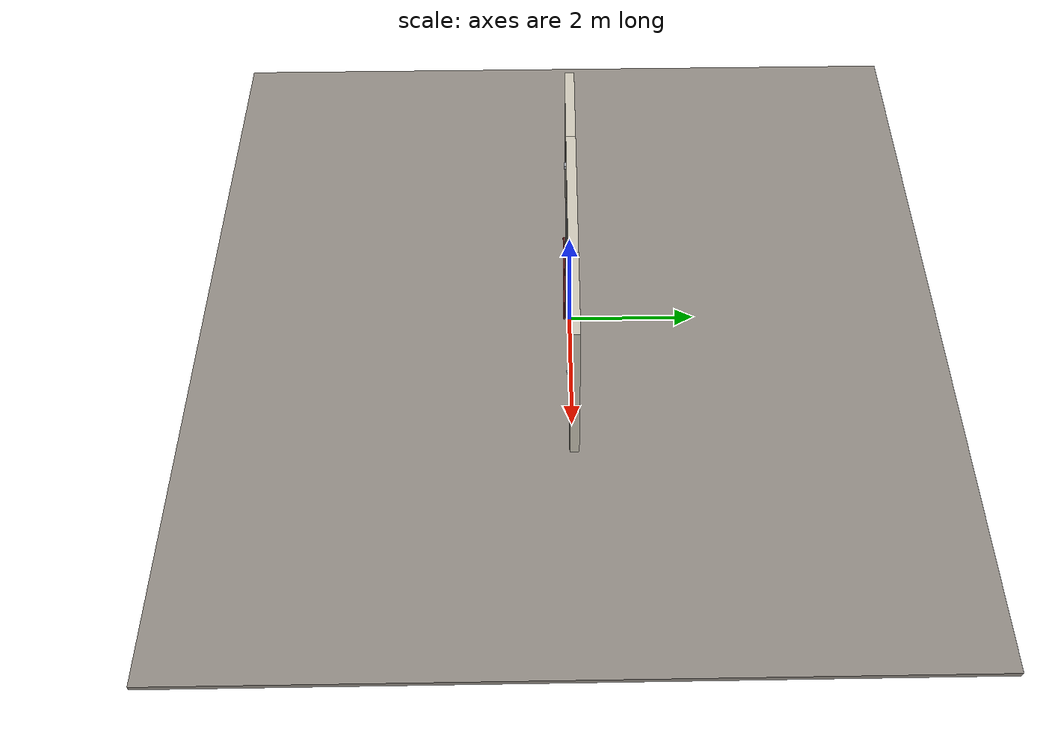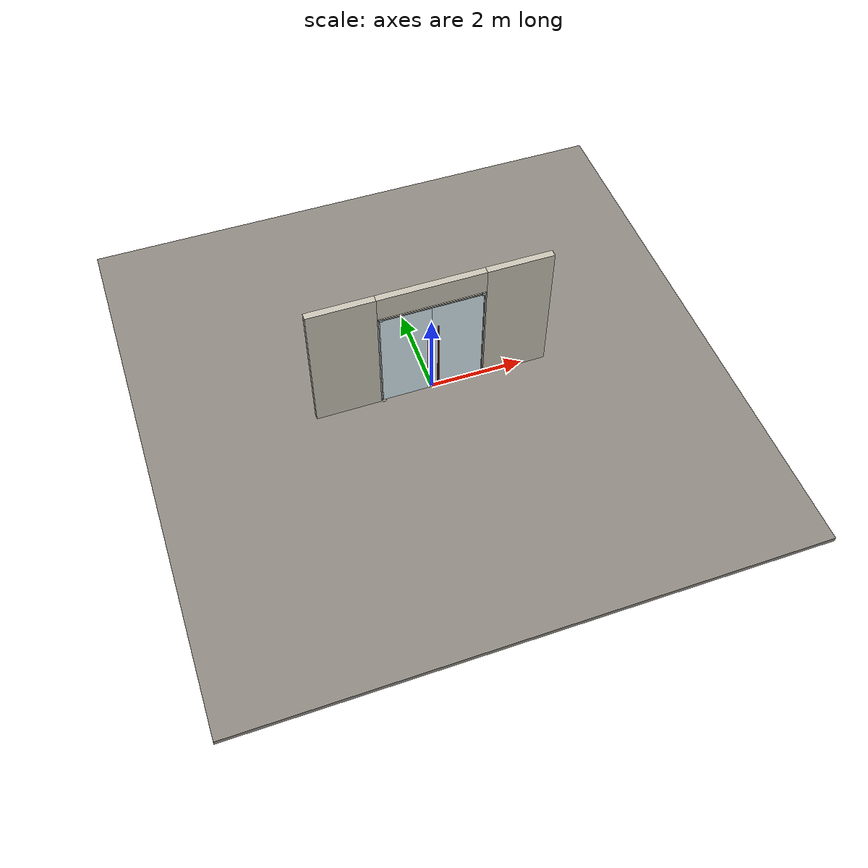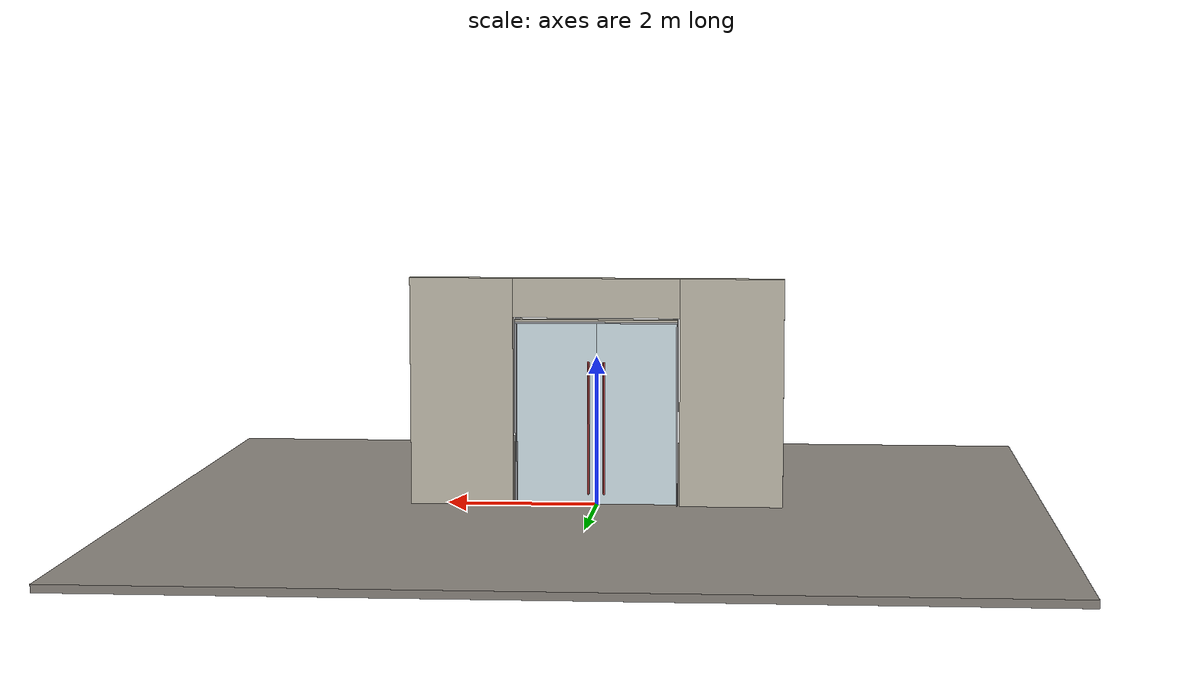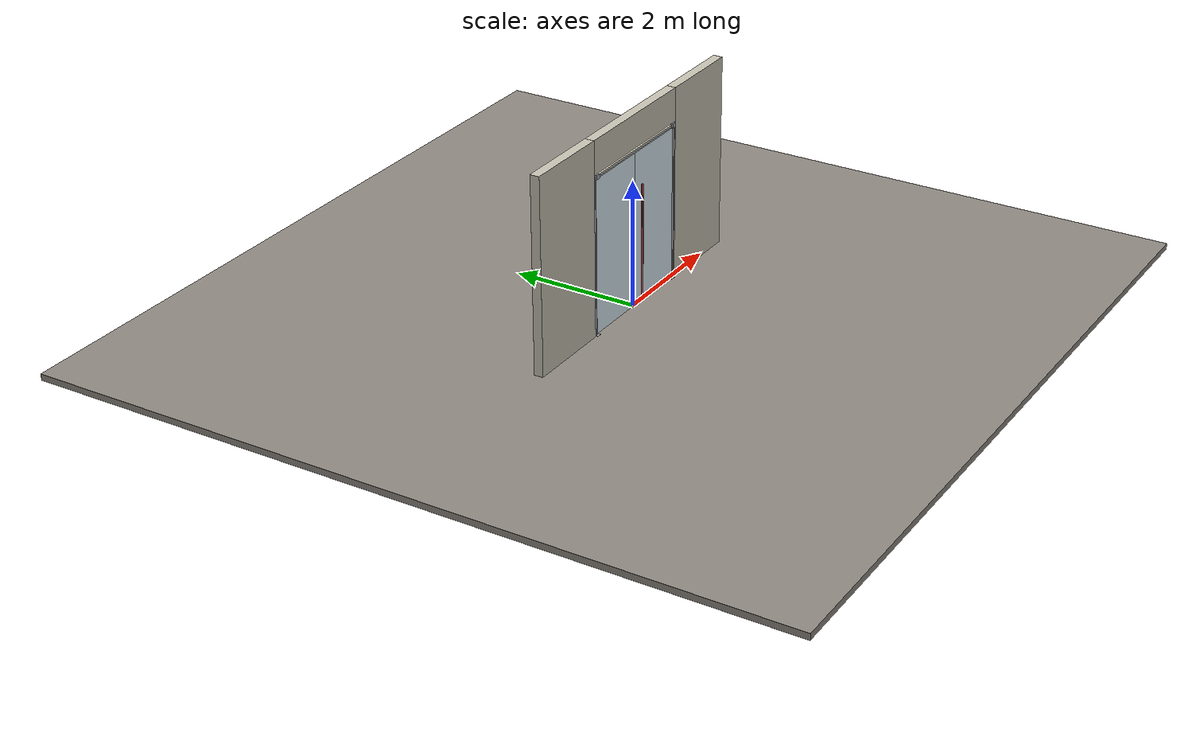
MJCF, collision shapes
<?xml version="1.0" ?>
<mujoco model="db0015_swing_double_simple">
  <compiler angle="radian" meshdir="../../hardware" texturedir="../../textures" autolimits="true" inertiafromgeom="false"/>
  <option timestep="0.002" integrator="implicitfast" cone="elliptic" impratio="10" noslip_iterations="3">
    <flag multiccd="enable"/>
  </option>
  <size memory="16M"/>
  <default>
    <geom condim="4" solref="0.005 1" solimp="0.95 0.99 0.001"/>
    <joint solreflimit="0.005 1" solimplimit="0.95 0.99 0.001"/>
    <tendon solreflimit="0.005 1"/>
    <equality solref="0.002 1"/>
  </default>
  <visual>
    <headlight ambient="0.4 0.4 0.4" diffuse="0.7 0.7 0.7" specular="0.2 0.2 0.2"/>
    <quality shadowsize="4096"/>
    <map znear="0.01" zfar="60"/>
  </visual>
  <asset>
    <mesh name="pull_897e207f65" file="pull_897e207f65.obj"/>
    <material name="mat_floor" rgba="0.55 0.53 0.5 1" specular="0.2" shininess="0.15" reflectance="0"/>
    <material name="mat_wall" rgba="0.78 0.76 0.7 1" specular="0.2" shininess="0.1" reflectance="0"/>
    <material name="mat_leaf_a" rgba="0.85 0.92 0.95 0.25" specular="0.2" shininess="0.95" reflectance="0.1"/>
    <material name="mat_glass_leaf" rgba="0.85 0.92 0.95 0.25" specular="0.2" shininess="0.95" reflectance="0.1"/>
    <material name="mat_patch" rgba="0.75 0.76 0.77 1" specular="0.8" shininess="0.65" reflectance="0.4"/>
    <material name="mat_hinge" rgba="0.65 0.66 0.68 1" specular="0.74" shininess="0.5" reflectance="0.36"/>
    <material name="mat_op_stainless" rgba="0.75 0.76 0.77 1" specular="0.8" shininess="0.65" reflectance="0.4"/>
    <material name="mat_closer" rgba="0.22 0.17 0.13 1" specular="0.8" shininess="0.6" reflectance="0.4"/>
    <material name="mat_leaf_b" rgba="0.85 0.92 0.95 0.25" specular="0.2" shininess="0.95" reflectance="0.1"/>
    <material name="mat_frame" rgba="0.8 0.81 0.83 1" specular="0.8" shininess="0.6" reflectance="0.4"/>
    <texture name="skybox" type="skybox" builtin="gradient" rgb1="0.6 0.7 0.85" rgb2="0.9 0.92 0.95" width="256" height="256"/>
  </asset>
  <worldbody>
    <light name="sun" pos="1.5 -2.5 4" dir="-0.3 0.5 -0.8" directional="true" diffuse="0.8 0.8 0.8" specular="0.3 0.3 0.3" castshadow="true"/>
    <light name="fill" pos="-1.5 2.5 3" dir="0.3 -0.5 -0.7" directional="true" diffuse="0.35 0.35 0.4" castshadow="false"/>
    <camera name="robot_view" pos="0 -2.892813 2.043887" xyaxes="1 0 0 0 0.26963 0.962964" fovy="52"/>
    <camera name="far_view" pos="0 2.952812 2.043887" xyaxes="-1 0 0 0 -0.26963 0.962964" fovy="52"/>
    <camera name="iso" pos="-2.221337 -2.425163 2.511538" xyaxes="0.741536 -0.670913 0 0.242917 0.268487 0.932151" fovy="46"/>
    <camera name="detail_handle" pos="0.0735 -0.8875 1.32" xyaxes="0.97561 0.219512 0 -0.070934 0.315262 0.94635" fovy="38"/>
    <geom name="floor" type="box" size="6 6 0.05" pos="0 0 -0.05" material="mat_floor" group="0" contype="1" conaffinity="1" friction="0.8 0.005 0.0001" density="2400"/>
    <geom name="wall_left" type="box" size="0.69175 0.0725 1.5255" pos="-1.80825 0.03 1.5255" material="mat_wall" group="0" contype="1" conaffinity="1" friction="0.6 0.005 0.0001" density="800"/>
    <geom name="wall_right" type="box" size="0.69175 0.0725 1.5255" pos="1.80825 0.03 1.5255" material="mat_wall" group="0" contype="1" conaffinity="1" friction="0.6 0.005 0.0001" density="800"/>
    <geom name="wall_header" type="box" size="1.1165 0.0725 0.2625" pos="0 0.03 2.7885" material="mat_wall" group="0" contype="1" conaffinity="1" friction="0.6 0.005 0.0001" density="800"/>
    <geom name="pivot_bottom_socket" type="box" size="0.035 0.035 0.0085" pos="-1.0525 -0.0325 -0.0015" material="mat_hinge" group="1" contype="0" conaffinity="0" density="7850"/>
    <geom name="pivot_top_bracket" type="box" size="0.035 0.035 0.0355" pos="-1.0525 -0.0325 2.4905" material="mat_hinge" group="1" contype="0" conaffinity="0" density="7850"/>
    <geom name="pivot_bottom_socket_2" type="box" size="0.035 0.035 0.0085" pos="1.0525 -0.0325 -0.0015" material="mat_hinge" group="1" contype="0" conaffinity="0" density="7850"/>
    <geom name="pivot_top_bracket_2" type="box" size="0.035 0.035 0.0355" pos="1.0525 -0.0325 2.4905" material="mat_hinge" group="1" contype="0" conaffinity="0" density="7850"/>
    <geom name="jamb_l" type="box" size="0.0095 0.0725 1.2255" pos="-1.081 0.03 1.2255" material="mat_frame" group="0" contype="1" conaffinity="1" friction="0.6 0.005 0.0001" density="300"/>
    <geom name="jamb_r" type="box" size="0.0095 0.0725 1.2255" pos="1.081 0.03 1.2255" material="mat_frame" group="0" contype="1" conaffinity="1" friction="0.6 0.005 0.0001" density="300"/>
    <geom name="jamb_head" type="box" size="1.0905 0.0725 0.0095" pos="0 0.03 2.4605" material="mat_frame" group="0" contype="1" conaffinity="1" friction="0.6 0.005 0.0001" density="300"/>
    <geom name="head_stud" type="box" size="1.0905 0.0725 0.015" pos="0 0.03 2.485" material="mat_wall" group="0" contype="1" conaffinity="1" friction="0.6 0.005 0.0001" density="500"/>
    <site name="approach_point" pos="0 -1.5 0" quat="1 0 0 0" size="0.05" rgba="0.2 0.9 0.2 0.5" group="4"/>
    <site name="goal_point" pos="0 1.5 0" quat="1 0 0 0" size="0.05" rgba="0.2 0.9 0.2 0.5" group="4"/>
    <site name="door_plane_center" pos="0 0 1.2255" quat="1 0 0 0" size="0.02" rgba="0.2 0.9 0.2 0.5" group="4"/>
    <site name="approach_point_2" pos="0 -1.5 0" quat="1 0 0 0" size="0.05" rgba="0.2 0.9 0.2 0.5" group="4"/>
    <site name="goal_point_2" pos="0 1.5 0" quat="1 0 0 0" size="0.05" rgba="0.2 0.9 0.2 0.5" group="4"/>
    <site name="door_plane_center_2" pos="0 0 1.2255" quat="1 0 0 0" size="0.02" rgba="0.2 0.9 0.2 0.5" group="4"/>
    <site name="approach_point_3" pos="0 -1.5 0" quat="1 0 0 0" size="0.05" rgba="0.2 0.9 0.2 0.5" group="4"/>
    <site name="goal_point_3" pos="0 1.5 0" quat="1 0 0 0" size="0.05" rgba="0.2 0.9 0.2 0.5" group="4"/>
    <site name="door_plane_center_3" pos="0 0 1.2255" quat="1 0 0 0" size="0.02" rgba="0.2 0.9 0.2 0.5" group="4"/>
    <body name="leaf_a" pos="-1.0715 0 0">
      <inertial pos="0.605659 0 1.197657" mass="130.07224" quat="0.507528 0.507528 0.492357 -0.492357" diaginertia="13.711326317 60.482375228 73.850672298"/>
      <joint name="leaf_a_hinge" type="hinge" axis="0 0 -1" pos="0.019 -0.0325 0" limited="true" range="0 1.570796" damping="10.570702" frictionloss="1.264587" stiffness="48.771441" springref="-2.176274" armature="0.02"/>
      <geom name="leaf_a_glass" type="box" size="0.5335 0.0225 1.219" pos="0.5365 0 1.228" material="mat_glass_leaf" group="0" contype="1" conaffinity="1" friction="0.4 0.005 0.0001" density="1"/>
      <geom name="leaf_a_pull_n" type="mesh" mesh="pull_897e207f65" pos="0.965 -0.0225 1.04" quat="0.707107 0.707107 0 0" material="mat_op_stainless" group="1" contype="0" conaffinity="0" density="3000"/>
      <geom name="leaf_a_pull_col_n" type="capsule" size="0.016 0.88" pos="0.965 -0.0875 1.04" material="mat_op_stainless" group="3" contype="1" conaffinity="1" rgba="0.8 0.3 0.3 0.25" friction="0.7 0.01 0.0001" density="3000"/>
      <geom name="leaf_a_pull_p" type="mesh" mesh="pull_897e207f65" pos="0.965 0.0225 1.04" quat="-0.707107 0.707107 0 0" material="mat_op_stainless" group="1" contype="0" conaffinity="0" density="3000"/>
      <geom name="leaf_a_pull_col_p" type="capsule" size="0.016 0.88" pos="0.965 0.0875 1.04" material="mat_op_stainless" group="3" contype="1" conaffinity="1" rgba="0.8 0.3 0.3 0.25" friction="0.7 0.01 0.0001" density="3000"/>
      <site name="leaf_a_pull_grip_n" pos="0.965 -0.0875 1.04" quat="1 0 0 0" size="0.012" rgba="0.2 0.9 0.2 0.5" group="4"/>
      <site name="leaf_a_pull_grip_p" pos="0.965 0.0875 1.04" quat="1 0 0 0" size="0.012" rgba="0.2 0.9 0.2 0.5" group="4"/>
      <site name="leaf_a_edge_mid" pos="1.07 0 1.219" quat="1 0 0 0" size="0.02" rgba="0.2 0.9 0.2 0.5" group="4"/>
    </body>
    <body name="leaf_b" pos="1.0715 0 0">
      <inertial pos="-0.605659 0 1.197657" mass="130.07224" quat="-0.492357 -0.492357 -0.507528 0.507528" diaginertia="13.711326317 60.482375228 73.850672298"/>
      <joint name="leaf_b_hinge" type="hinge" axis="0 0 1" pos="-0.019 -0.0325 0" limited="true" range="0 1.570796" damping="10.570702" frictionloss="1.264587" stiffness="48.771441" springref="-2.176274" armature="0.02"/>
      <geom name="leaf_b_glass" type="box" size="0.5335 0.0225 1.219" pos="-0.5365 0 1.228" material="mat_glass_leaf" group="0" contype="1" conaffinity="1" friction="0.4 0.005 0.0001" density="1"/>
      <geom name="leaf_b_pull_n" type="mesh" mesh="pull_897e207f65" pos="-0.965 -0.0225 1.04" quat="0 0 -0.707107 0.707107" material="mat_op_stainless" group="1" contype="0" conaffinity="0" density="3000"/>
      <geom name="leaf_b_pull_col_n" type="capsule" size="0.016 0.88" pos="-0.965 -0.0875 1.04" material="mat_op_stainless" group="3" contype="1" conaffinity="1" rgba="0.8 0.3 0.3 0.25" friction="0.7 0.01 0.0001" density="3000"/>
      <geom name="leaf_b_pull_p" type="mesh" mesh="pull_897e207f65" pos="-0.965 0.0225 1.04" quat="0 0 0.707107 0.707107" material="mat_op_stainless" group="1" contype="0" conaffinity="0" density="3000"/>
      <geom name="leaf_b_pull_col_p" type="capsule" size="0.016 0.88" pos="-0.965 0.0875 1.04" material="mat_op_stainless" group="3" contype="1" conaffinity="1" rgba="0.8 0.3 0.3 0.25" friction="0.7 0.01 0.0001" density="3000"/>
      <site name="leaf_b_pull_grip_n" pos="-0.965 -0.0875 1.04" quat="1 0 0 0" size="0.012" rgba="0.2 0.9 0.2 0.5" group="4"/>
      <site name="leaf_b_pull_grip_p" pos="-0.965 0.0875 1.04" quat="1 0 0 0" size="0.012" rgba="0.2 0.9 0.2 0.5" group="4"/>
      <site name="leaf_b_edge_mid" pos="-1.07 0 1.219" quat="1 0 0 0" size="0.02" rgba="0.2 0.9 0.2 0.5" group="4"/>
    </body>
  </worldbody>
  <sensor>
    <jointpos name="leaf_a_hinge_pos" joint="leaf_a_hinge"/>
    <jointvel name="leaf_a_hinge_vel" joint="leaf_a_hinge"/>
    <jointpos name="leaf_b_hinge_pos" joint="leaf_b_hinge"/>
    <jointvel name="leaf_b_hinge_vel" joint="leaf_b_hinge"/>
  </sensor>
</mujoco>
